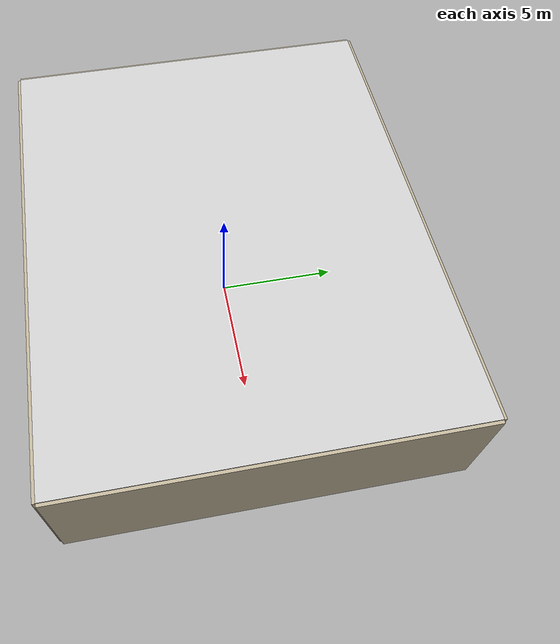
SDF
<?xml version="1.0"?>
<sdf version="1.9">
<world name="warehouse_factory">

  <!-- ════════ PHYSICS ════════ -->
  <physics name="1ms" type="ode">
    <max_step_size>0.001</max_step_size>
    <real_time_factor>1.0</real_time_factor>
    <ode>
      <solver>
        <type>quick</type>
        <iters>50</iters>
        <sor>1.4</sor>
      </solver>
    </ode>
  </physics>

  <!-- ════════ REQUIRED SYSTEM PLUGINS ════════ -->
  <plugin filename="ignition-gazebo-physics-system"
          name="ignition::gazebo::systems::Physics"/>
  <plugin filename="ignition-gazebo-user-commands-system"
          name="ignition::gazebo::systems::UserCommands"/>
  <plugin filename="ignition-gazebo-scene-broadcaster-system"
          name="ignition::gazebo::systems::SceneBroadcaster"/>
  <plugin filename="ignition-gazebo-sensors-system"
          name="ignition::gazebo::systems::Sensors">
    <render_engine>ogre</render_engine>
  </plugin>

  <!-- ════════ LIGHTING ════════ -->
  <!-- Main overhead fluorescent-style lights -->
  <light name="light_overhead_1" type="point">
    <pose>0 4 4.5 0 0 0</pose>
    <diffuse>0.9 0.9 0.85 1</diffuse>
    <specular>0.3 0.3 0.3 1</specular>
    <attenuation><range>20</range><constant>0.3</constant><linear>0.02</linear><quadratic>0.001</quadratic></attenuation>
    <cast_shadows>false</cast_shadows>
  </light>
  <light name="light_overhead_2" type="point">
    <pose>0 -4 4.5 0 0 0</pose>
    <diffuse>0.9 0.9 0.85 1</diffuse>
    <specular>0.3 0.3 0.3 1</specular>
    <attenuation><range>20</range><constant>0.3</constant><linear>0.02</linear><quadratic>0.001</quadratic></attenuation>
    <cast_shadows>false</cast_shadows>
  </light>
  <light name="sun" type="directional">
    <pose>0 0 10 0 0 0</pose>
    <diffuse>0.6 0.6 0.6 1</diffuse>
    <specular>0.1 0.1 0.1 1</specular>
    <direction>-0.3 0.1 -0.9</direction>
    <cast_shadows>true</cast_shadows>
  </light>

  <!-- ════════ GROUND / FLOOR ════════ -->
  <model name="factory_floor">
    <static>true</static>
    <link name="link">
      <collision name="col">
        <geometry><plane><normal>0 0 1</normal><size>20 16</size></plane></geometry>
        <surface>
          <friction><ode><mu>0.8</mu><mu2>0.8</mu2></ode></friction>
          <bounce><restitution_coefficient>0</restitution_coefficient><threshold>1e6</threshold></bounce>
          <contact><ode><kp>1e6</kp><kd>100</kd></ode></contact>
        </surface>
      </collision>
      <visual name="vis">
        <geometry><plane><normal>0 0 1</normal><size>20 16</size></plane></geometry>
        <material>
          <!-- Concrete floor look -->
          <ambient>0.55 0.55 0.55 1</ambient>
          <diffuse>0.65 0.65 0.65 1</diffuse>
          <specular>0.05 0.05 0.05 1</specular>
        </material>
      </visual>
    </link>
  </model>

  <!-- ════════ FACTORY WALLS ════════ -->
  <!-- North wall -->
  <model name="wall_north">
    <static>true</static>
    <pose>0 8 2.5 0 0 0</pose>
    <link name="link">
      <collision name="col"><geometry><box><size>20 0.25 5</size></box></geometry></collision>
      <visual name="vis">
        <geometry><box><size>20 0.25 5</size></box></geometry>
        <material><ambient>0.7 0.65 0.55 1</ambient><diffuse>0.75 0.70 0.60 1</diffuse></material>
      </visual>
    </link>
  </model>
  <!-- South wall -->
  <model name="wall_south">
    <static>true</static>
    <pose>0 -8 2.5 0 0 0</pose>
    <link name="link">
      <collision name="col"><geometry><box><size>20 0.25 5</size></box></geometry></collision>
      <visual name="vis">
        <geometry><box><size>20 0.25 5</size></box></geometry>
        <material><ambient>0.7 0.65 0.55 1</ambient><diffuse>0.75 0.70 0.60 1</diffuse></material>
      </visual>
    </link>
  </model>
  <!-- East wall -->
  <model name="wall_east">
    <static>true</static>
    <pose>10 0 2.5 0 0 0</pose>
    <link name="link">
      <collision name="col"><geometry><box><size>0.25 16 5</size></box></geometry></collision>
      <visual name="vis">
        <geometry><box><size>0.25 16 5</size></box></geometry>
        <material><ambient>0.7 0.65 0.55 1</ambient><diffuse>0.75 0.70 0.60 1</diffuse></material>
      </visual>
    </link>
  </model>
  <!-- West wall -->
  <model name="wall_west">
    <static>true</static>
    <pose>-10 0 2.5 0 0 0</pose>
    <link name="link">
      <collision name="col"><geometry><box><size>0.25 16 5</size></box></geometry></collision>
      <visual name="vis">
        <geometry><box><size>0.25 16 5</size></box></geometry>
        <material><ambient>0.7 0.65 0.55 1</ambient><diffuse>0.75 0.70 0.60 1</diffuse></material>
      </visual>
    </link>
  </model>

  <!-- ════════ CEILING ════════ -->
  <model name="ceiling">
    <static>true</static>
    <pose>0 0 5.0 0 0 0</pose>
    <link name="link">
      <visual name="vis">
        <geometry><box><size>20 16 0.1</size></box></geometry>
        <material><ambient>0.8 0.8 0.8 1</ambient><diffuse>0.8 0.8 0.8 1</diffuse></material>
      </visual>
    </link>
  </model>

  <!-- ════════ FLOOR MARKINGS (yellow safety lanes) ════════ -->
  <!-- Left aisle lane marking -->
  <model name="lane_left">
    <static>true</static>
    <pose>-2.0 0 0.001 0 0 0</pose>
    <link name="link">
      <visual name="vis">
        <geometry><box><size>0.1 14 0.002</size></box></geometry>
        <material><ambient>0.9 0.8 0.0 1</ambient><diffuse>0.9 0.8 0.0 1</diffuse></material>
      </visual>
    </link>
  </model>
  <!-- Right aisle lane marking -->
  <model name="lane_right">
    <static>true</static>
    <pose>2.0 0 0.001 0 0 0</pose>
    <link name="link">
      <visual name="vis">
        <geometry><box><size>0.1 14 0.002</size></box></geometry>
        <material><ambient>0.9 0.8 0.0 1</ambient><diffuse>0.9 0.8 0.0 1</diffuse></material>
      </visual>
    </link>
  </model>

  <!-- ── PICK ZONE: LEFT SIDE  x=-5 ── -->

  <!-- Shelf A1: PICK zone, back-left -->
  <model name="shelf_A1">
    <static>true</static>
    <pose>-6.0 5.0 0 0 0 0</pose>
    <link name="link">
      <!-- Uprights -->
      <collision name="col_frame"><geometry><box><size>1.5 0.05 2.0</size></box></geometry><pose>0 0 1.0 0 0 0</pose></collision>
      <!-- Level 1 shelf board at 0.48m -->
      <collision name="col_l1"><geometry><box><size>1.5 0.40 0.03</size></box></geometry><pose>0 0 0.48 0 0 0</pose></collision>
      <!-- Level 2 shelf board at 0.98m -->
      <collision name="col_l2"><geometry><box><size>1.5 0.40 0.03</size></box></geometry><pose>0 0 0.98 0 0 0</pose></collision>
      <!-- Level 3 shelf board at 1.48m -->
      <collision name="col_l3"><geometry><box><size>1.5 0.40 0.03</size></box></geometry><pose>0 0 1.48 0 0 0</pose></collision>

      <!-- Visual frame (steel blue-grey) -->
      <visual name="vis_frame">
        <pose>0 0 1.0 0 0 0</pose>
        <geometry><box><size>1.5 0.05 2.0</size></box></geometry>
        <material><ambient>0.35 0.40 0.45 1</ambient><diffuse>0.40 0.45 0.50 1</diffuse><specular>0.3 0.3 0.3 1</specular></material>
      </visual>
      <visual name="vis_l1">
        <pose>0 0 0.48 0 0 0</pose>
        <geometry><box><size>1.5 0.40 0.03</size></box></geometry>
        <material><ambient>0.35 0.40 0.45 1</ambient><diffuse>0.40 0.45 0.50 1</diffuse></material>
      </visual>
      <visual name="vis_l2">
        <pose>0 0 0.98 0 0 0</pose>
        <geometry><box><size>1.5 0.40 0.03</size></box></geometry>
        <material><ambient>0.35 0.40 0.45 1</ambient><diffuse>0.40 0.45 0.50 1</diffuse></material>
      </visual>
      <visual name="vis_l3">
        <pose>0 0 1.48 0 0 0</pose>
        <geometry><box><size>1.5 0.40 0.03</size></box></geometry>
        <material><ambient>0.35 0.40 0.45 1</ambient><diffuse>0.40 0.45 0.50 1</diffuse></material>
      </visual>
    </link>
  </model>

  <!-- Shelf A2: PICK zone, front-left -->
  <model name="shelf_A2">
    <static>true</static>
    <pose>-6.0 2.0 0 0 0 0</pose>
    <link name="link">
      <collision name="col_frame"><geometry><box><size>1.5 0.05 2.0</size></box></geometry><pose>0 0 1.0 0 0 0</pose></collision>
      <collision name="col_l1"><geometry><box><size>1.5 0.40 0.03</size></box></geometry><pose>0 0 0.48 0 0 0</pose></collision>
      <collision name="col_l2"><geometry><box><size>1.5 0.40 0.03</size></box></geometry><pose>0 0 0.98 0 0 0</pose></collision>
      <visual name="vis_frame">
        <pose>0 0 1.0 0 0 0</pose>
        <geometry><box><size>1.5 0.05 2.0</size></box></geometry>
        <material><ambient>0.35 0.40 0.45 1</ambient><diffuse>0.40 0.45 0.50 1</diffuse></material>
      </visual>
      <visual name="vis_l1">
        <pose>0 0 0.48 0 0 0</pose>
        <geometry><box><size>1.5 0.40 0.03</size></box></geometry>
        <material><ambient>0.35 0.40 0.45 1</ambient><diffuse>0.40 0.45 0.50 1</diffuse></material>
      </visual>
      <visual name="vis_l2">
        <pose>0 0 0.98 0 0 0</pose>
        <geometry><box><size>1.5 0.40 0.03</size></box></geometry>
        <material><ambient>0.35 0.40 0.45 1</ambient><diffuse>0.40 0.45 0.50 1</diffuse></material>
      </visual>
    </link>
  </model>

  <!-- ── PLACE ZONE: RIGHT SIDE  x=+5 ── -->

  <!-- Shelf B1: PLACE zone, back-right -->
  <model name="shelf_B1">
    <static>true</static>
    <pose>6.0 5.0 0 0 0 0</pose>
    <link name="link">
      <collision name="col_frame"><geometry><box><size>1.5 0.05 2.0</size></box></geometry><pose>0 0 1.0 0 0 0</pose></collision>
      <collision name="col_l1"><geometry><box><size>1.5 0.40 0.03</size></box></geometry><pose>0 0 0.48 0 0 0</pose></collision>
      <collision name="col_l2"><geometry><box><size>1.5 0.40 0.03</size></box></geometry><pose>0 0 0.98 0 0 0</pose></collision>
      <visual name="vis_frame">
        <pose>0 0 1.0 0 0 0</pose>
        <geometry><box><size>1.5 0.05 2.0</size></box></geometry>
        <material><ambient>0.35 0.40 0.45 1</ambient><diffuse>0.40 0.45 0.50 1</diffuse></material>
      </visual>
      <visual name="vis_l1">
        <pose>0 0 0.48 0 0 0</pose>
        <geometry><box><size>1.5 0.40 0.03</size></box></geometry>
        <material><ambient>0.35 0.40 0.45 1</ambient><diffuse>0.40 0.45 0.50 1</diffuse></material>
      </visual>
      <visual name="vis_l2">
        <pose>0 0 0.98 0 0 0</pose>
        <geometry><box><size>1.5 0.40 0.03</size></box></geometry>
        <material><ambient>0.35 0.40 0.45 1</ambient><diffuse>0.40 0.45 0.50 1</diffuse></material>
      </visual>
    </link>
  </model>

  <!-- Shelf B2: PLACE zone, front-right -->
  <model name="shelf_B2">
    <static>true</static>
    <pose>6.0 2.0 0 0 0 0</pose>
    <link name="link">
      <collision name="col_frame"><geometry><box><size>1.5 0.05 2.0</size></box></geometry><pose>0 0 1.0 0 0 0</pose></collision>
      <collision name="col_l1"><geometry><box><size>1.5 0.40 0.03</size></box></geometry><pose>0 0 0.48 0 0 0</pose></collision>
      <collision name="col_l2"><geometry><box><size>1.5 0.40 0.03</size></box></geometry><pose>0 0 0.98 0 0 0</pose></collision>
      <visual name="vis_frame">
        <pose>0 0 1.0 0 0 0</pose>
        <geometry><box><size>1.5 0.05 2.0</size></box></geometry>
        <material><ambient>0.35 0.40 0.45 1</ambient><diffuse>0.40 0.45 0.50 1</diffuse></material>
      </visual>
      <visual name="vis_l1">
        <pose>0 0 0.48 0 0 0</pose>
        <geometry><box><size>1.5 0.40 0.03</size></box></geometry>
        <material><ambient>0.35 0.40 0.45 1</ambient><diffuse>0.40 0.45 0.50 1</diffuse></material>
      </visual>
      <visual name="vis_l2">
        <pose>0 0 0.98 0 0 0</pose>
        <geometry><box><size>1.5 0.40 0.03</size></box></geometry>
        <material><ambient>0.35 0.40 0.45 1</ambient><diffuse>0.40 0.45 0.50 1</diffuse></material>
      </visual>
    </link>
  </model>

  <!-- ── NEGATIVE Y SIDE shelves ── -->
  <model name="shelf_C1">
    <static>true</static>
    <pose>-6.0 -2.0 0 0 0 0</pose>
    <link name="link">
      <collision name="col_frame"><geometry><box><size>1.5 0.05 2.0</size></box></geometry><pose>0 0 1.0 0 0 0</pose></collision>
      <collision name="col_l1"><geometry><box><size>1.5 0.40 0.03</size></box></geometry><pose>0 0 0.48 0 0 0</pose></collision>
      <visual name="vis_frame">
        <pose>0 0 1.0 0 0 0</pose>
        <geometry><box><size>1.5 0.05 2.0</size></box></geometry>
        <material><ambient>0.35 0.40 0.45 1</ambient><diffuse>0.40 0.45 0.50 1</diffuse></material>
      </visual>
      <visual name="vis_l1">
        <pose>0 0 0.48 0 0 0</pose>
        <geometry><box><size>1.5 0.40 0.03</size></box></geometry>
        <material><ambient>0.35 0.40 0.45 1</ambient><diffuse>0.40 0.45 0.50 1</diffuse></material>
      </visual>
    </link>
  </model>

  <model name="shelf_D1">
    <static>true</static>
    <pose>6.0 -2.0 0 0 0 0</pose>
    <link name="link">
      <collision name="col_frame"><geometry><box><size>1.5 0.05 2.0</size></box></geometry><pose>0 0 1.0 0 0 0</pose></collision>
      <collision name="col_l1"><geometry><box><size>1.5 0.40 0.03</size></box></geometry><pose>0 0 0.48 0 0 0</pose></collision>
      <visual name="vis_frame">
        <pose>0 0 1.0 0 0 0</pose>
        <geometry><box><size>1.5 0.05 2.0</size></box></geometry>
        <material><ambient>0.35 0.40 0.45 1</ambient><diffuse>0.40 0.45 0.50 1</diffuse></material>
      </visual>
      <visual name="vis_l1">
        <pose>0 0 0.48 0 0 0</pose>
        <geometry><box><size>1.5 0.40 0.03</size></box></geometry>
        <material><ambient>0.35 0.40 0.45 1</ambient><diffuse>0.40 0.45 0.50 1</diffuse></material>
      </visual>
    </link>
  </model>

  <!-- Box height above ground = shelf_board_top + half_box_height
       shelf board top = 0.48 + 0.015 = 0.495 m
       box half height = 0.040 m
       box Z centre    = 0.535 m -->

  <!-- Shelf A1 boxes (PICK zone) -->
  <model name="box_A1_1">
    <pose>-6.5 5.0 0.535 0 0 0</pose>
    <link name="link">
      <collision name="col">
        <geometry><box><size>0.030 0.065 0.080</size></box></geometry>
        <surface>
          <friction><ode><mu>0.6</mu><mu2>0.6</mu2></ode></friction>
          <contact><ode><kp>1e5</kp><kd>10</kd></ode></contact>
        </surface>
      </collision>
      <visual name="vis">
        <geometry><box><size>0.030 0.065 0.080</size></box></geometry>
        <material>
          <ambient>0.8 0.3 0.1 1</ambient>
          <diffuse>0.9 0.4 0.1 1</diffuse>
        </material>
      </visual>
      <inertial>
        <mass>0.2</mass>
        <inertia>
          <ixx>0.000227</ixx><ixy>0</ixy><ixz>0</ixz>
          <iyy>0.000193</iyy><iyz>0</iyz>
          <izz>0.000057</izz>
        </inertia>
      </inertial>
    </link>
  </model>

  <model name="box_A1_2">
    <pose>-6.0 5.0 0.535 0 0 0</pose>
    <link name="link">
      <collision name="col">
        <geometry><box><size>0.030 0.065 0.080</size></box></geometry>
        <surface><friction><ode><mu>0.6</mu><mu2>0.6</mu2></ode></friction></surface>
      </collision>
      <visual name="vis">
        <geometry><box><size>0.030 0.065 0.080</size></box></geometry>
        <material><ambient>0.2 0.5 0.8 1</ambient><diffuse>0.2 0.5 0.9 1</diffuse></material>
      </visual>
      <inertial><mass>0.2</mass>
        <inertia><ixx>0.000227</ixx><ixy>0</ixy><ixz>0</ixz><iyy>0.000193</iyy><iyz>0</iyz><izz>0.000057</izz></inertia>
      </inertial>
    </link>
  </model>

  <model name="box_A1_3">
    <pose>-5.5 5.0 0.535 0 0 0</pose>
    <link name="link">
      <collision name="col">
        <geometry><box><size>0.030 0.065 0.080</size></box></geometry>
        <surface><friction><ode><mu>0.6</mu><mu2>0.6</mu2></ode></friction></surface>
      </collision>
      <visual name="vis">
        <geometry><box><size>0.030 0.065 0.080</size></box></geometry>
        <material><ambient>0.1 0.7 0.2 1</ambient><diffuse>0.1 0.8 0.2 1</diffuse></material>
      </visual>
      <inertial><mass>0.2</mass>
        <inertia><ixx>0.000227</ixx><ixy>0</ixy><ixz>0</ixz><iyy>0.000193</iyy><iyz>0</iyz><izz>0.000057</izz></inertia>
      </inertial>
    </link>
  </model>

  <!-- Shelf A2 boxes -->
  <model name="box_A2_1">
    <pose>-6.5 2.0 0.535 0 0 0</pose>
    <link name="link">
      <collision name="col"><geometry><box><size>0.030 0.065 0.080</size></box></geometry><surface><friction><ode><mu>0.6</mu><mu2>0.6</mu2></ode></friction></surface></collision>
      <visual name="vis"><geometry><box><size>0.030 0.065 0.080</size></box></geometry><material><ambient>0.8 0.7 0.1 1</ambient><diffuse>0.9 0.8 0.1 1</diffuse></material></visual>
      <inertial><mass>0.2</mass><inertia><ixx>0.000227</ixx><ixy>0</ixy><ixz>0</ixz><iyy>0.000193</iyy><iyz>0</iyz><izz>0.000057</izz></inertia></inertial>
    </link>
  </model>

  <model name="box_A2_2">
    <pose>-6.0 2.0 0.535 0 0 0</pose>
    <link name="link">
      <collision name="col"><geometry><box><size>0.030 0.065 0.080</size></box></geometry><surface><friction><ode><mu>0.6</mu><mu2>0.6</mu2></ode></friction></surface></collision>
      <visual name="vis"><geometry><box><size>0.030 0.065 0.080</size></box></geometry><material><ambient>0.7 0.2 0.7 1</ambient><diffuse>0.8 0.2 0.8 1</diffuse></material></visual>
      <inertial><mass>0.2</mass><inertia><ixx>0.000227</ixx><ixy>0</ixy><ixz>0</ixz><iyy>0.000193</iyy><iyz>0</iyz><izz>0.000057</izz></inertia></inertial>
    </link>
  </model>

  <!-- ════════ SIGNAGE / ZONE MARKERS ════════ -->
  <!-- "PICK" zone sign -->
  <model name="sign_pick">
    <static>true</static>
    <pose>-6.0 6.5 1.8 0 0 0</pose>
    <link name="link">
      <visual name="vis">
        <geometry><box><size>1.0 0.05 0.3</size></box></geometry>
        <material><ambient>0.0 0.6 0.0 1</ambient><diffuse>0.0 0.7 0.0 1</diffuse></material>
      </visual>
    </link>
  </model>
  <!-- "PLACE" zone sign -->
  <model name="sign_place">
    <static>true</static>
    <pose>6.0 6.5 1.8 0 0 0</pose>
    <link name="link">
      <visual name="vis">
        <geometry><box><size>1.0 0.05 0.3</size></box></geometry>
        <material><ambient>0.8 0.2 0.0 1</ambient><diffuse>0.9 0.2 0.0 1</diffuse></material>
      </visual>
    </link>
  </model>

  <!-- ════════ SUPPORT PILLARS ════════ -->
  <model name="pillar_NE">
    <static>true</static>
    <pose>8 6 2.5 0 0 0</pose>
    <link name="link">
      <collision name="col"><geometry><box><size>0.3 0.3 5</size></box></geometry></collision>
      <visual name="vis"><geometry><box><size>0.3 0.3 5</size></box></geometry>
        <material><ambient>0.5 0.5 0.5 1</ambient><diffuse>0.55 0.55 0.55 1</diffuse></material>
      </visual>
    </link>
  </model>
  <model name="pillar_NW">
    <static>true</static>
    <pose>-8 6 2.5 0 0 0</pose>
    <link name="link">
      <collision name="col"><geometry><box><size>0.3 0.3 5</size></box></geometry></collision>
      <visual name="vis"><geometry><box><size>0.3 0.3 5</size></box></geometry>
        <material><ambient>0.5 0.5 0.5 1</ambient><diffuse>0.55 0.55 0.55 1</diffuse></material>
      </visual>
    </link>
  </model>
  <model name="pillar_SE">
    <static>true</static>
    <pose>8 -6 2.5 0 0 0</pose>
    <link name="link">
      <collision name="col"><geometry><box><size>0.3 0.3 5</size></box></geometry></collision>
      <visual name="vis"><geometry><box><size>0.3 0.3 5</size></box></geometry>
        <material><ambient>0.5 0.5 0.5 1</ambient><diffuse>0.55 0.55 0.55 1</diffuse></material>
      </visual>
    </link>
  </model>
  <model name="pillar_SW">
    <static>true</static>
    <pose>-8 -6 2.5 0 0 0</pose>
    <link name="link">
      <collision name="col"><geometry><box><size>0.3 0.3 5</size></box></geometry></collision>
      <visual name="vis"><geometry><box><size>0.3 0.3 5</size></box></geometry>
        <material><ambient>0.5 0.5 0.5 1</ambient><diffuse>0.55 0.55 0.55 1</diffuse></material>
      </visual>
    </link>
  </model>

</world>
</sdf>
